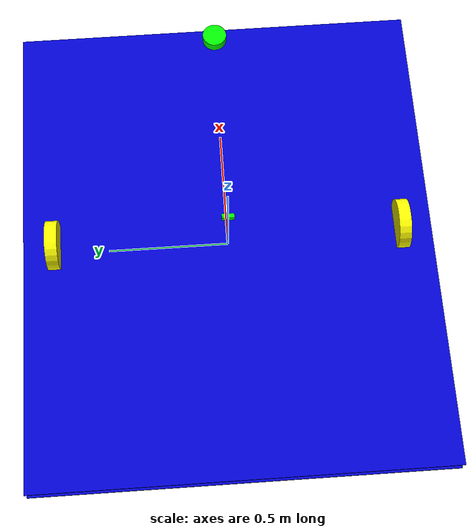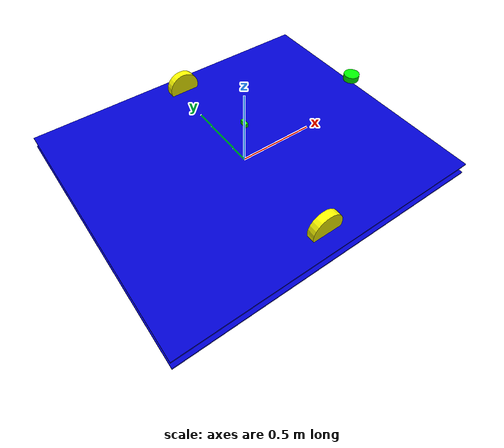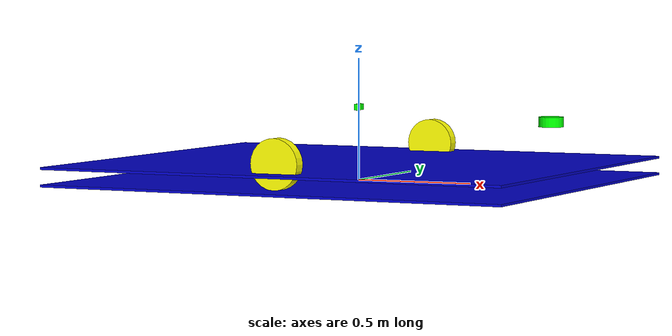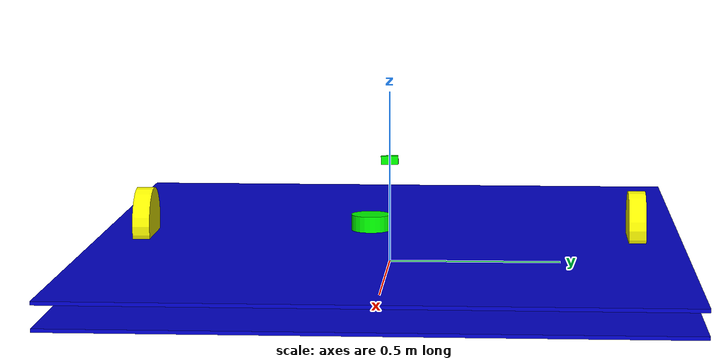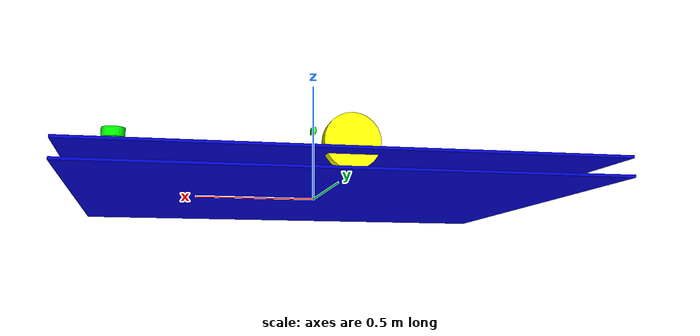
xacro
<?xml version="1.0"?>
   <robot name="Samsung" xmlns:xacro="http://ros.org/wiki/xacro">

    <link name="base_link">
      <visual>
        <geometry>
          <box size="2.00 1.7 0.01"/>
        </geometry>
        <origin rpy="0 0 0" xyz="0.0 0.00 0.06"/>
        <material name="blue">
          <color rgba="0 0 .8 1"/>
        </material>
      </visual>
    </link>

    <link name="base_footprint">
      <visual>
        <geometry>
          <box size="2.00 1.7 0.01"/>
        </geometry>
        <origin rpy="0 0 0" xyz="0.0 0.0 0.0"/>
        <material name="blue">
          <color rgba="0 0 .8 1"/>
        </material>
      </visual>
    </link>

    <joint name="base_to_footprint" type="fixed">
      <parent link="base_footprint"/>
       <child link="base_link"/>
      <origin xyz="0 0 0.01"/>
    </joint>

    <link name="wheel_right_center">
      <visual>
        <geometry>
          <cylinder length="0.05" radius="0.1016"/>
        </geometry>
        <origin rpy="1.57 0 0" xyz="0.00 -0.72 0.1016"/>
        <material name="yellow">
          <color rgba="255 255 0 1"/>
        </material>
      </visual>
    </link>

    <link name="wheel_left_center">
      <visual>
        <geometry>
          <cylinder length="0.05" radius="0.1016"/>
        </geometry>
        <origin rpy="1.57 0 0" xyz="0.00 0.72 0.1016"/>
        <material name="yellow">
          <color rgba="255 255 0 1"/>
        </material>
      </visual>
    </link>

	<link name="imu_link">
      <visual>
        <geometry>
          <box size="0.018 0.05 0.025"/>
        </geometry>
        <material name="green">
          <color rgba="0 255 0 1"/>
        </material>
      </visual>
    </link>

    <link name="laser">
      <visual>
        <geometry>
          <cylinder length="0.04" radius="0.05"/>
        </geometry>
        <material name="green">
          <color rgba="0 255 0 1"/>
        </material>
      </visual>
    </link>

    <joint name="base_to_wheel_left_center" type="fixed">
      <parent link="base_link"/>
       <child link="wheel_left_center"/>
      <origin xyz="0 0 0"/>
    </joint>

    <joint name="base_to_wheel_right_center" type="fixed">
      <parent link="base_link"/>
       <child link="wheel_right_center"/>
      <origin xyz="0 0 0"/>
    </joint>

    <joint name="base_to_laser" type="fixed">
      <parent link="base_link"/>
       <child link="laser"/>
      <origin xyz="0.85 0.0 0.25" rpy="3.14 0 0"/>
    </joint>

	 <joint name="base_to_imu_link" type="fixed">
      <parent link="base_footprint"/>
       <child link="imu_link"/>
      <origin xyz="0 0.0 0.3" rpy="-0.03 0 3.14"/>
    </joint>

</robot>
